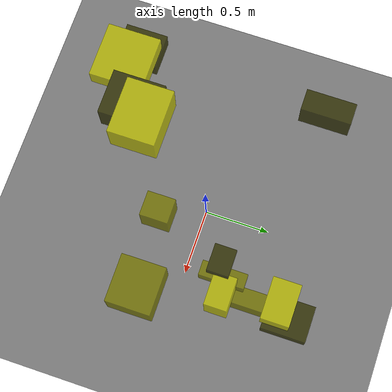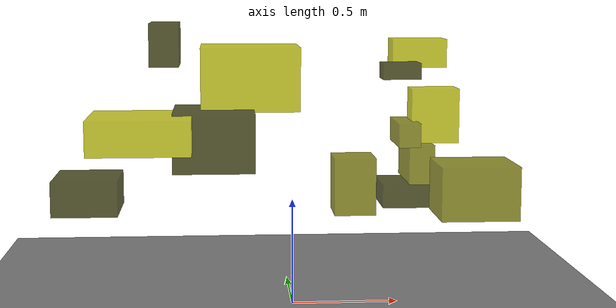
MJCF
<?xml version="1.0"?>
<mujoco model="obstacle_scene">
  <compiler angle="radian" coordinate="local"/>
  <option timestep="0.001" gravity="0 0 -9.81"/>

  <asset>
    <material name="obstacle_mat" rgba="0.8 0.8 0.0 0.8"/>
    <material name="ground_mat" rgba="0.5 0.5 0.5 1"/>
  </asset>

  <worldbody>
    <!-- Ground plane -->
    <geom name="ground" type="plane" size="3 3 0.1" material="ground_mat"/>

    <!-- Obstacles -->
    <body name="obstacle_0" pos="0.658845 0.845220 0.386283">
      <geom name="obs_0" type="box" size="0.132725 0.167150 0.062334" rgba="0.2 0.2 0.0 0.8"/>
    </body>
    <body name="obstacle_1" pos="0.666335 0.472635 0.615788">
      <geom name="obs_1" type="box" size="0.063494 0.189654 0.097299" rgba="0.5 0.5 0.0 0.8"/>
    </body>
    <body name="obstacle_2" pos="0.728486 0.360330 0.861497">
      <geom name="obs_2" type="box" size="0.117183 0.080338 0.134430" rgba="0.8 0.8 0.0 0.8"/>
    </body>
    <body name="obstacle_3" pos="-0.618124 0.669319 1.203127">
      <geom name="obs_3" type="box" size="0.074570 0.173558 0.109516" rgba="0.2 0.2 0.0 0.8"/>
    </body>
    <body name="obstacle_4" pos="0.258540 -0.263465 0.620819">
      <geom name="obs_4" type="box" size="0.091786 0.104189 0.127445" rgba="0.5 0.5 0.0 0.8"/>
    </body>
    <body name="obstacle_5" pos="0.709748 0.761290 1.148746">
      <geom name="obs_5" type="box" size="0.141995 0.096349 0.073755" rgba="0.8 0.8 0.0 0.8"/>
    </body>
    <body name="obstacle_6" pos="0.553514 0.310069 1.086814">
      <geom name="obs_6" type="box" size="0.093474 0.075174 0.039889" rgba="0.2 0.2 0.0 0.8"/>
    </body>
    <body name="obstacle_7" pos="0.818806 -0.228168 0.585428">
      <geom name="obs_7" type="box" size="0.176724 0.165937 0.121807" rgba="0.5 0.5 0.0 0.8"/>
    </body>
    <body name="obstacle_8" pos="-0.210982 -0.518472 1.124092">
      <geom name="obs_8" type="box" size="0.204890 0.167854 0.132087" rgba="0.8 0.8 0.0 0.8"/>
    </body>
    <body name="obstacle_9" pos="-0.867373 -0.789828 0.683921">
      <geom name="obs_9" type="box" size="0.129080 0.157618 0.069646" rgba="0.2 0.2 0.0 0.8"/>
    </body>
    <body name="obstacle_10" pos="0.585728 0.332010 0.778278">
      <geom name="obs_10" type="box" size="0.053135 0.161703 0.058403" rgba="0.5 0.5 0.0 0.8"/>
    </body>
    <body name="obstacle_11" pos="-0.651299 -0.815260 0.927362">
      <geom name="obs_11" type="box" size="0.203018 0.196629 0.070321" rgba="0.8 0.8 0.0 0.8"/>
    </body>
    <body name="obstacle_12" pos="-0.362585 -0.657405 0.884037">
      <geom name="obs_12" type="box" size="0.165171 0.195891 0.120024" rgba="0.2 0.2 0.0 0.8"/>
    </body>
  </worldbody>
</mujoco>
